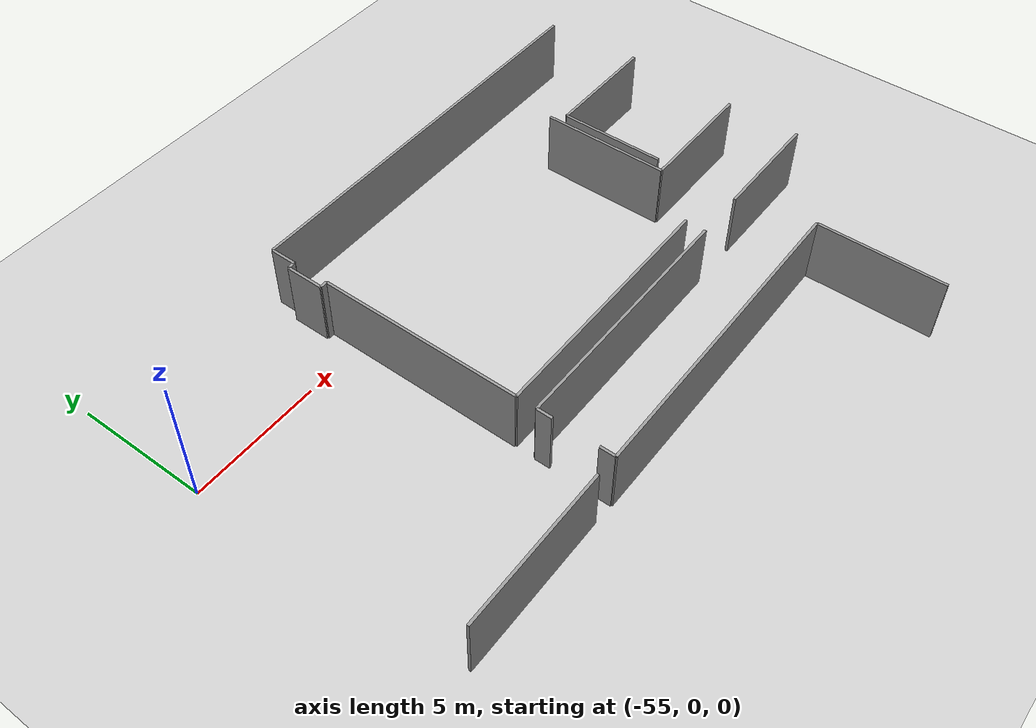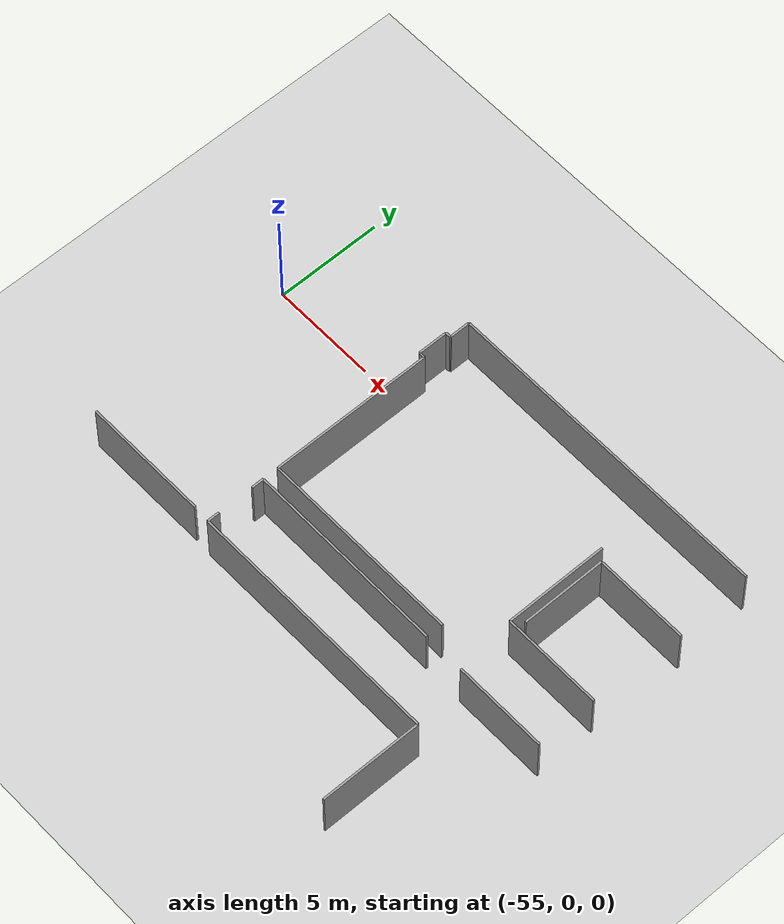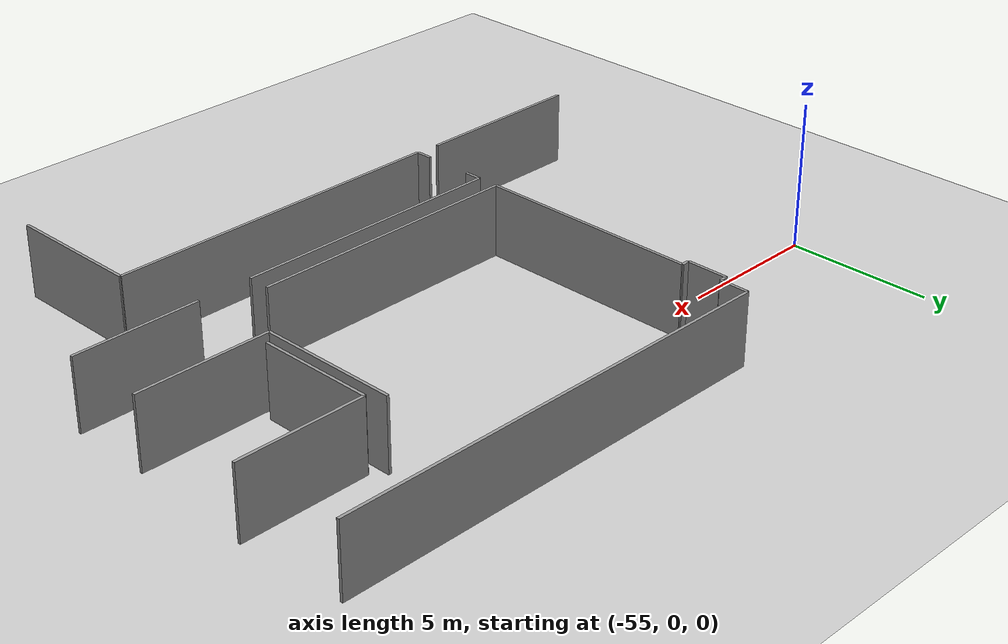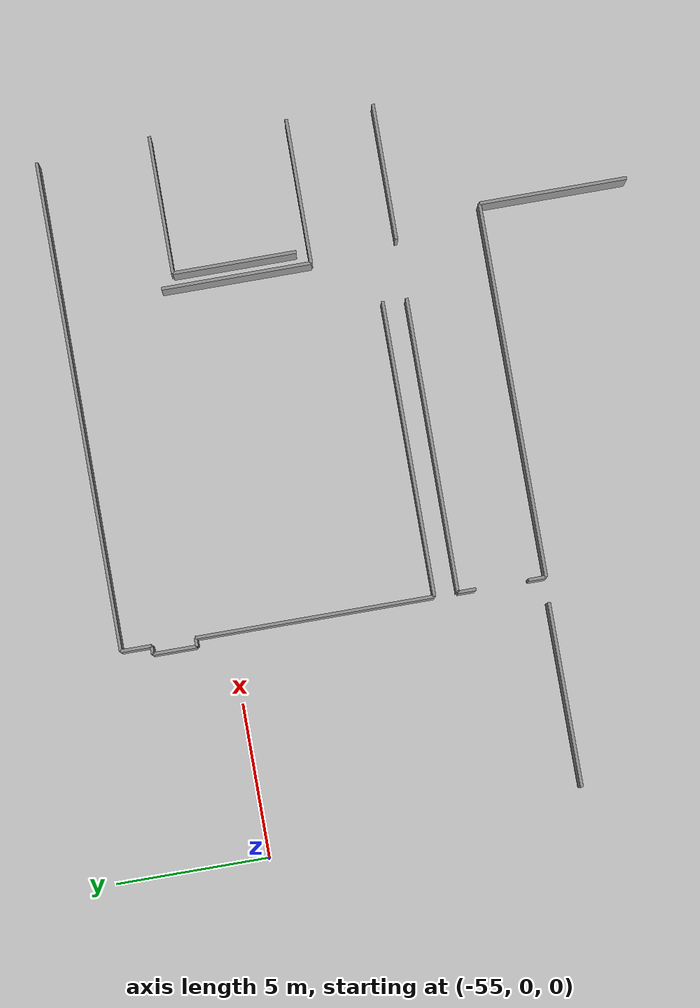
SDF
<sdf version="1.6">
 <world name="default">
  <model name="ground_plane">
   <static>1</static>
   <link name="link">
    <collision name="collision">
     <geometry><plane><normal>0 0 1</normal><size>100 100</size></plane></geometry>
     <surface><friction><ode><mu>100</mu><mu2>50</mu2></ode></friction></surface>
    </collision>
    <visual name="visual">
     <cast_shadows>0</cast_shadows>
     <geometry><plane><normal>0 0 1</normal><size>100 100</size></plane></geometry>
     <material>
      <script><uri>file://media/materials/scripts/gazebo.material</uri><name>Gazebo/Grey</name></script>
     </material>
    </visual>
   </link>
  </model>
  <model name="0510035342_A_40_1_101">
   <static>1</static>
   <link name="Wall_16">
    <collision name="Wall_16_Collision">
     <geometry><box><size>5.95528560056 0.1 2.5</size></box></geometry>
     <pose>2.97764280028 0 1.25 0 0 0</pose>
    </collision>
    <visual name="Wall_16_Visual">
     <pose>2.97764280028 0 1.25 0 0 0</pose>
     <geometry><box><size>5.95528560056 0.1 2.5</size></box></geometry>
     <material>
      <script><uri>file://media/materials/scripts/gazebo.material</uri><name>Gazebo/Grey</name></script>
      <ambient>1 1 1 1</ambient>
     </material>
    </visual>
    <pose>67.1863253073 -35.4096820075 0 0 0 -3.13801012104</pose>
   </link>
   <link name="Wall_17">
    <collision name="Wall_17_Collision">
     <geometry><box><size>0.574773951031 0.1 2.5</size></box></geometry>
     <pose>0.287386975516 0 1.25 0 0 0</pose>
    </collision>
    <visual name="Wall_17_Visual">
     <pose>0.287386975516 0 1.25 0 0 0</pose>
     <geometry><box><size>0.574773951031 0.1 2.5</size></box></geometry>
     <material>
      <script><uri>file://media/materials/scripts/gazebo.material</uri><name>Gazebo/Grey</name></script>
      <ambient>1 1 1 1</ambient>
     </material>
    </visual>
    <pose>67.9990856446 -35.4640353551 0 0 0 1.57079632679</pose>
   </link>
   <link name="Wall_18">
    <collision name="Wall_18_Collision">
     <geometry><box><size>0.580869653561 0.1 2.5</size></box></geometry>
     <pose>0.29043482678 0 1.25 0 0 0</pose>
    </collision>
    <visual name="Wall_18_Visual">
     <pose>0.29043482678 0 1.25 0 0 0</pose>
     <geometry><box><size>0.580869653561 0.1 2.5</size></box></geometry>
     <material>
      <script><uri>file://media/materials/scripts/gazebo.material</uri><name>Gazebo/Grey</name></script>
      <ambient>1 1 1 1</ambient>
     </material>
    </visual>
    <pose>67.9990856446 -33.1987199025 0 0 0 1.57079632679</pose>
   </link>
   <link name="Wall_19">
    <collision name="Wall_19_Collision">
     <geometry><box><size>9.48897693793 0.1 2.5</size></box></geometry>
     <pose>4.74448846896 0 1.25 0 0 0</pose>
    </collision>
    <visual name="Wall_19_Visual">
     <pose>4.74448846896 0 1.25 0 0 0</pose>
     <geometry><box><size>9.48897693793 0.1 2.5</size></box></geometry>
     <material>
      <script><uri>file://media/materials/scripts/gazebo.material</uri><name>Gazebo/Grey</name></script>
      <ambient>1 1 1 1</ambient>
     </material>
    </visual>
    <pose>67.9990856446 -32.6178502489 0 0 0 0.0</pose>
   </link>
   <link name="Wall_20">
    <collision name="Wall_20_Collision">
     <geometry><box><size>4.37392055268 0.1 2.5</size></box></geometry>
     <pose>2.18696027634 0 1.25 0 0 0</pose>
    </collision>
    <visual name="Wall_20_Visual">
     <pose>2.18696027634 0 1.25 0 0 0</pose>
     <geometry><box><size>4.37392055268 0.1 2.5</size></box></geometry>
     <material>
      <script><uri>file://media/materials/scripts/gazebo.material</uri><name>Gazebo/Grey</name></script>
      <ambient>1 1 1 1</ambient>
     </material>
    </visual>
    <pose>79.3922076603 -32.6178502489 0 0 0 0.0</pose>
   </link>
   <link name="Wall_28">
    <collision name="Wall_28_Collision">
     <geometry><box><size>4.74855227065 0.1 2.5</size></box></geometry>
     <pose>2.37427613532 0 1.25 0 0 0</pose>
    </collision>
    <visual name="Wall_28_Visual">
     <pose>2.37427613532 0 1.25 0 0 0</pose>
     <geometry><box><size>4.74855227065 0.1 2.5</size></box></geometry>
     <material>
      <script><uri>file://media/materials/scripts/gazebo.material</uri><name>Gazebo/Grey</name></script>
      <ambient>1 1 1 1</ambient>
     </material>
    </visual>
    <pose>80.0698465915 -40.1691557452 0 0 0 1.57079632679</pose>
   </link>
   <link name="Wall_29">
    <collision name="Wall_29_Collision">
     <geometry><box><size>12.0708390829 0.1 2.5</size></box></geometry>
     <pose>6.03541954144 0 1.25 0 0 0</pose>
    </collision>
    <visual name="Wall_29_Visual">
     <pose>6.03541954144 0 1.25 0 0 0</pose>
     <geometry><box><size>12.0708390829 0.1 2.5</size></box></geometry>
     <material>
      <script><uri>file://media/materials/scripts/gazebo.material</uri><name>Gazebo/Grey</name></script>
      <ambient>1 1 1 1</ambient>
     </material>
    </visual>
    <pose>80.0698465915 -35.4206034746 0 0 0 -3.13799456286</pose>
   </link>
   <link name="Wall_30">
    <collision name="Wall_30_Collision">
     <geometry><box><size>7.69658640658 0.1 2.5</size></box></geometry>
     <pose>3.84829320329 0 1.25 0 0 0</pose>
    </collision>
    <visual name="Wall_30_Visual">
     <pose>3.84829320329 0 1.25 0 0 0</pose>
     <geometry><box><size>7.69658640658 0.1 2.5</size></box></geometry>
     <material>
      <script><uri>file://media/materials/scripts/gazebo.material</uri><name>Gazebo/Grey</name></script>
      <ambient>1 1 1 1</ambient>
     </material>
    </visual>
    <pose>67.9990856446 -31.862745098 0 0 0 1.57079632679</pose>
   </link>
   <link name="Wall_31">
    <collision name="Wall_31_Collision">
     <geometry><box><size>0.27583053947 0.1 2.5</size></box></geometry>
     <pose>0.137915269735 0 1.25 0 0 0</pose>
    </collision>
    <visual name="Wall_31_Visual">
     <pose>0.137915269735 0 1.25 0 0 0</pose>
     <geometry><box><size>0.27583053947 0.1 2.5</size></box></geometry>
     <material>
      <script><uri>file://media/materials/scripts/gazebo.material</uri><name>Gazebo/Grey</name></script>
      <ambient>1 1 1 1</ambient>
     </material>
    </visual>
    <pose>67.9990856446 -24.1661586915 0 0 0 3.14159265359</pose>
   </link>
   <link name="Wall_32">
    <collision name="Wall_32_Collision">
     <geometry><box><size>1.42309255308 0.1 2.5</size></box></geometry>
     <pose>0.711546276542 0 1.25 0 0 0</pose>
    </collision>
    <visual name="Wall_32_Visual">
     <pose>0.711546276542 0 1.25 0 0 0</pose>
     <geometry><box><size>1.42309255308 0.1 2.5</size></box></geometry>
     <material>
      <script><uri>file://media/materials/scripts/gazebo.material</uri><name>Gazebo/Grey</name></script>
      <ambient>1 1 1 1</ambient>
     </material>
    </visual>
    <pose>67.7232551052 -24.1661586915 0 0 0 1.57079632679</pose>
   </link>
   <link name="Wall_33">
    <collision name="Wall_33_Collision">
     <geometry><box><size>0.261353245962 0.1 2.5</size></box></geometry>
     <pose>0.130676622981 0 1.25 0 0 0</pose>
    </collision>
    <visual name="Wall_33_Visual">
     <pose>0.130676622981 0 1.25 0 0 0</pose>
     <geometry><box><size>0.261353245962 0.1 2.5</size></box></geometry>
     <material>
      <script><uri>file://media/materials/scripts/gazebo.material</uri><name>Gazebo/Grey</name></script>
      <ambient>1 1 1 1</ambient>
     </material>
    </visual>
    <pose>67.7232551052 -22.7430661384 0 0 0 0.0</pose>
   </link>
   <link name="Wall_34">
    <collision name="Wall_34_Collision">
     <geometry><box><size>0.987503809814 0.1 2.5</size></box></geometry>
     <pose>0.493751904907 0 1.25 0 0 0</pose>
    </collision>
    <visual name="Wall_34_Visual">
     <pose>0.493751904907 0 1.25 0 0 0</pose>
     <geometry><box><size>0.987503809814 0.1 2.5</size></box></geometry>
     <material>
      <script><uri>file://media/materials/scripts/gazebo.material</uri><name>Gazebo/Grey</name></script>
      <ambient>1 1 1 1</ambient>
     </material>
    </visual>
    <pose>67.9846083511 -22.7430661384 0 0 0 1.57079632679</pose>
   </link>
   <link name="Wall_35">
    <collision name="Wall_35_Collision">
     <geometry><box><size>15.7708523824 0.1 2.5</size></box></geometry>
     <pose>7.8854261912 0 1.25 0 0 0</pose>
    </collision>
    <visual name="Wall_35_Visual">
     <pose>7.8854261912 0 1.25 0 0 0</pose>
     <geometry><box><size>15.7708523824 0.1 2.5</size></box></geometry>
     <material>
      <script><uri>file://media/materials/scripts/gazebo.material</uri><name>Gazebo/Grey</name></script>
      <ambient>1 1 1 1</ambient>
     </material>
    </visual>
    <pose>67.9846083511 -21.7555623286 0 0 0 0.0</pose>
   </link>
   <link name="Wall_38">
    <collision name="Wall_38_Collision">
     <geometry><box><size>4.83135223001 0.1 2.5</size></box></geometry>
     <pose>2.41567611501 0 1.25 0 0 0</pose>
    </collision>
    <visual name="Wall_38_Visual">
     <pose>2.41567611501 0 1.25 0 0 0</pose>
     <geometry><box><size>4.83135223001 0.1 2.5</size></box></geometry>
     <material>
      <script><uri>file://media/materials/scripts/gazebo.material</uri><name>Gazebo/Grey</name></script>
      <ambient>1 1 1 1</ambient>
     </material>
    </visual>
    <pose>79.1151071828 -24.9852687189 0 0 0 -1.57079632679</pose>
   </link>
   <link name="Wall_39">
    <collision name="Wall_39_Collision">
     <geometry><box><size>4.65000507975 0.1 2.5</size></box></geometry>
     <pose>2.32500253988 0 1.25 0 0 0</pose>
    </collision>
    <visual name="Wall_39_Visual">
     <pose>2.32500253988 0 1.25 0 0 0</pose>
     <geometry><box><size>4.65000507975 0.1 2.5</size></box></geometry>
     <material>
      <script><uri>file://media/materials/scripts/gazebo.material</uri><name>Gazebo/Grey</name></script>
      <ambient>1 1 1 1</ambient>
     </material>
    </visual>
    <pose>79.1151071828 -29.8166209489 0 0 0 0.0</pose>
   </link>
   <link name="Wall_42">
    <collision name="Wall_42_Collision">
     <geometry><box><size>9.52124680949 0.1 2.5</size></box></geometry>
     <pose>4.76062340474 0 1.25 0 0 0</pose>
    </collision>
    <visual name="Wall_42_Visual">
     <pose>4.76062340474 0 1.25 0 0 0</pose>
     <geometry><box><size>9.52124680949 0.1 2.5</size></box></geometry>
     <material>
      <script><uri>file://media/materials/scripts/gazebo.material</uri><name>Gazebo/Grey</name></script>
      <ambient>1 1 1 1</ambient>
     </material>
    </visual>
    <pose>77.5203190084 -31.8467438789 0 0 0 -3.13991207257</pose>
   </link>
   <link name="Wall_59">
    <collision name="Wall_59_Collision">
     <geometry><box><size>3.98404957838 0.1 2.5</size></box></geometry>
     <pose>1.99202478919 0 1.25 0 0 0</pose>
    </collision>
    <visual name="Wall_59_Visual">
     <pose>1.99202478919 0 1.25 0 0 0</pose>
     <geometry><box><size>3.98404957838 0.1 2.5</size></box></geometry>
     <material>
      <script><uri>file://media/materials/scripts/gazebo.material</uri><name>Gazebo/Grey</name></script>
      <ambient>1 1 1 1</ambient>
     </material>
    </visual>
    <pose>79.5440922483 -29.408462867 0 0 0 1.57079632679</pose>
   </link>
   <link name="Wall_60">
    <collision name="Wall_60_Collision">
     <geometry><box><size>4.42141623489 0.1 2.5</size></box></geometry>
     <pose>2.21070811744 0 1.25 0 0 0</pose>
    </collision>
    <visual name="Wall_60_Visual">
     <pose>2.21070811744 0 1.25 0 0 0</pose>
     <geometry><box><size>4.42141623489 0.1 2.5</size></box></geometry>
     <material>
      <script><uri>file://media/materials/scripts/gazebo.material</uri><name>Gazebo/Grey</name></script>
      <ambient>1 1 1 1</ambient>
     </material>
    </visual>
    <pose>79.5440922483 -25.4244132886 0 0 0 0.0</pose>
   </link>
   <pose>-115.7 25.291537133 0 0 0 0</pose>
  </model>
 </world>
</sdf>
